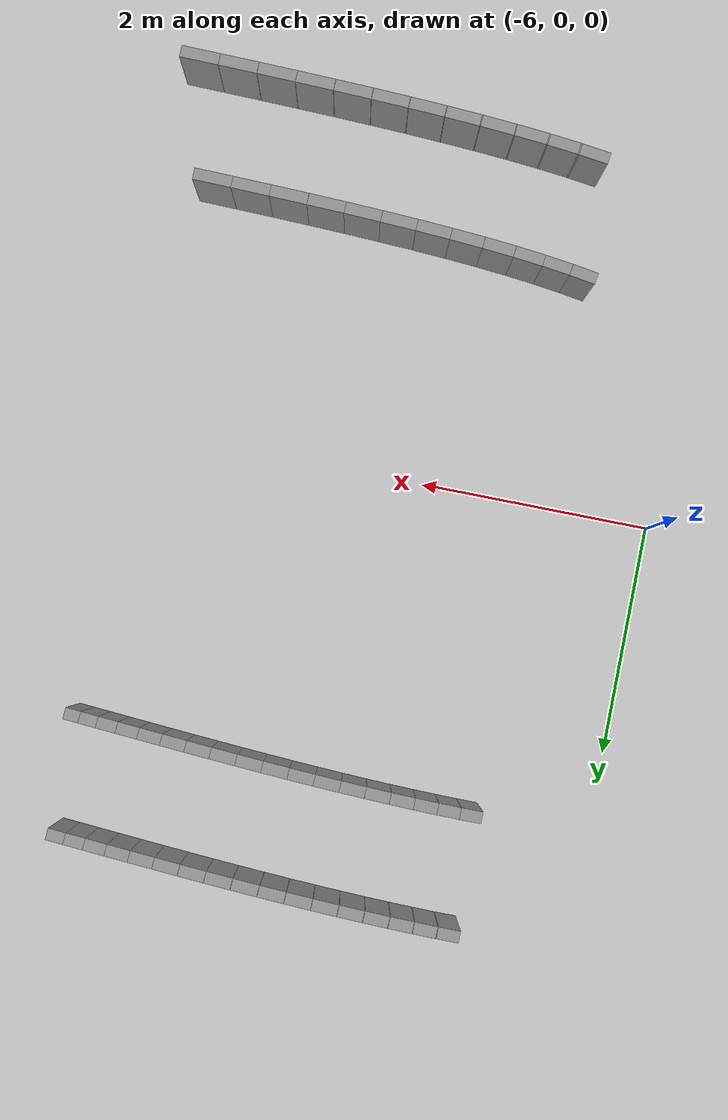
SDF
<sdf version="1.6">
 <world name="default">
  <include><uri>model://ground_plane</uri></include>
  <include><uri>model://sun</uri></include>
  <model name="wall_4_outward">
   <static>true</static>
   <link name="link">
    <collision name="collision">
     <geometry><box><size>0.1306976688387076 0.1 1.0</size></box></geometry>
    </collision>
    <visual name="visual">
     <geometry><box><size>0.1306976688387076 0.1 1.0</size></box></geometry>
     <material>
      <script><uri>file://media/materials/scripts/gazebo.material</uri><name>Gazebo/Gray</name></script>
     </material>
    </visual>
   </link>
   <pose>-1.4865466899300728 2.5135411570151414 0.5 0 0 3.067268497837281</pose>
  </model>
  <model name="wall_5_outward">
   <static>true</static>
   <link name="link">
    <collision name="collision"><geometry><box><size>0.151537158029325 0.1 1.0</size></box></geometry></collision>
    <visual name="visual">
     <geometry><box><size>0.151537158029325 0.1 1.0</size></box></geometry>
     <material>
      <script><uri>file://media/materials/scripts/gazebo.material</uri><name>Gazebo/Gray</name></script>
     </material>
    </visual>
   </link>
   <pose>-1.6272745344189103 2.524019618722159 0.5 0 0 3.0672726943349033</pose>
  </model>
  <model name="wall_6_outward">
   <static>true</static>
   <link name="link">
    <collision name="collision">
     <geometry><box><size>0.16990768270761064 0.1 1.0</size></box></geometry>
    </collision>
    <visual name="visual">
     <geometry><box><size>0.16990768270761064 0.1 1.0</size></box></geometry>
     <material>
      <script><uri>file://media/materials/scripts/gazebo.material</uri><name>Gazebo/Gray</name></script>
     </material>
    </visual>
   </link>
   <pose>-1.7875548677201951 2.535932249018213 0.5 0 0 3.067523641800801</pose>
  </model>
  <model name="wall_7_outward">
   <static>true</static>
   <link name="link">
    <collision name="collision">
     <geometry><box><size>0.18561479345425694 0.1 1.0</size></box></geometry>
    </collision>
    <visual name="visual">
     <geometry><box><size>0.18561479345425694 0.1 1.0</size></box></geometry>
     <material>
      <script><uri>file://media/materials/scripts/gazebo.material</uri><name>Gazebo/Gray</name></script>
     </material>
    </visual>
   </link>
   <pose>-1.9648328296530533 2.549031070232745 0.5 0 0 3.0681259019662304</pose>
  </model>
  <model name="wall_8_outward">
   <static>true</static>
   <link name="link">
    <collision name="collision">
     <geometry><box><size>0.1985889123548593 0.1 1.0</size></box></geometry>
    </collision>
    <visual name="visual">
     <geometry><box><size>0.1985889123548593 0.1 1.0</size></box></geometry>
     <material>
      <script><uri>file://media/materials/scripts/gazebo.material</uri><name>Gazebo/Gray</name></script>
     </material>
    </visual>
   </link>
   <pose>-2.156424088885226 2.563027538495194 0.5 0 0 3.0691754652221364</pose>
  </model>
  <model name="wall_9_outward">
   <static>true</static>
   <link name="link">
    <collision name="collision">
     <geometry><box><size>0.20883403933903916 0.1 1.0</size></box></geometry>
    </collision>
    <visual name="visual">
     <geometry><box><size>0.20883403933903916 0.1 1.0</size></box></geometry>
     <material>
      <script><uri>file://media/materials/scripts/gazebo.material</uri><name>Gazebo/Gray</name></script>
     </material>
    </visual>
   </link>
   <pose>-2.359613490430906 2.577601708133042 0.5 0 0 3.0707611890762445</pose>
  </model>
  <model name="wall_10_outward">
   <static>true</static>
   <link name="link">
    <collision name="collision"><geometry><box><size>0.216436371516167 0.1 1.0</size></box></geometry></collision>
    <visual name="visual">
     <geometry><box><size>0.216436371516167 0.1 1.0</size></box></geometry>
     <material>
      <script><uri>file://media/materials/scripts/gazebo.material</uri><name>Gazebo/Gray</name></script>
     </material>
    </visual>
   </link>
   <pose>-2.5717321251800476 2.592412532849492 0.5 0 0 3.072964394940024</pose>
  </model>
  <model name="wall_11_outward">
   <static>true</static>
   <link name="link">
    <collision name="collision">
     <geometry><box><size>0.22154062162151802 0.1 1.0</size></box></geometry>
    </collision>
    <visual name="visual">
     <geometry><box><size>0.22154062162151802 0.1 1.0</size></box></geometry>
     <material>
      <script><uri>file://media/materials/scripts/gazebo.material</uri><name>Gazebo/Gray</name></script>
     </material>
    </visual>
   </link>
   <pose>-2.790226542347383 2.607111235725002 0.5 0 0 3.0758444247548358</pose>
  </model>
  <model name="wall_12_outward">
   <static>true</static>
   <link name="link">
    <collision name="collision">
     <geometry><box><size>0.22433429040783703 0.1 1.0</size></box></geometry>
    </collision>
    <visual name="visual">
     <geometry><box><size>0.22433429040783703 0.1 1.0</size></box></geometry>
     <material>
      <script><uri>file://media/materials/scripts/gazebo.material</uri><name>Gazebo/Gray</name></script>
     </material>
    </visual>
   </link>
   <pose>-3.0127080790691334 2.621356044116502 0.5 0 0 3.0794390664921374</pose>
  </model>
  <model name="wall_13_outward">
   <static>true</static>
   <link name="link">
    <collision name="collision">
     <geometry><box><size>0.22504762564123426 0.1 1.0</size></box></geometry>
    </collision>
    <visual name="visual">
     <geometry><box><size>0.22504762564123426 0.1 1.0</size></box></geometry>
     <material>
      <script><uri>file://media/materials/scripts/gazebo.material</uri><name>Gazebo/Gray</name></script>
     </material>
    </visual>
   </link>
   <pose>-3.236994426883612 2.634825399262277 0.5 0 0 3.083774877540525</pose>
  </model>
  <model name="wall_14_outward">
   <static>true</static>
   <link name="link">
    <collision name="collision">
     <geometry><box><size>0.2239262534368999 0.1 1.0</size></box></geometry>
    </collision>
    <visual name="visual">
     <geometry><box><size>0.2239262534368999 0.1 1.0</size></box></geometry>
     <material>
      <script><uri>file://media/materials/scripts/gazebo.material</uri><name>Gazebo/Gray</name></script>
     </material>
    </visual>
   </link>
   <pose>-3.461137621740315 2.647230652320924 0.5 0 0 3.0888454774995346</pose>
  </model>
  <model name="wall_15_outward">
   <static>true</static>
   <link name="link">
    <collision name="collision">
     <geometry><box><size>0.22121787977610916 0.1 1.0</size></box></geometry>
    </collision>
    <visual name="visual">
     <geometry><box><size>0.22121787977610916 0.1 1.0</size></box></geometry>
     <material>
      <script><uri>file://media/materials/scripts/gazebo.material</uri><name>Gazebo/Gray</name></script>
     </material>
    </visual>
   </link>
   <pose>-3.6834319924109 2.658326774298981 0.5 0 0 3.0946251012105375</pose>
  </model>
  <model name="wall_16_outward">
   <static>true</static>
   <link name="link">
    <collision name="collision">
     <geometry><box><size>0.2171589068234425 0.1 1.0</size></box></geometry>
    </collision>
    <visual name="visual">
     <geometry><box><size>0.2171589068234425 0.1 1.0</size></box></geometry>
     <material>
      <script><uri>file://media/materials/scripts/gazebo.material</uri><name>Gazebo/Gray</name></script>
     </material>
    </visual>
   </link>
   <pose>-3.9024093239194277 2.6679173634878026 0.5 0 0 3.1010815743255806</pose>
  </model>
  <model name="wall_17_outward">
   <static>true</static>
   <link name="link">
    <collision name="collision">
     <geometry><box><size>0.21196690600001417 0.1 1.0</size></box></geometry>
    </collision>
    <visual name="visual">
     <geometry><box><size>0.21196690600001417 0.1 1.0</size></box></geometry>
     <material>
      <script><uri>file://media/materials/scripts/gazebo.material</uri><name>Gazebo/Gray</name></script>
     </material>
    </visual>
   </link>
   <pose>-4.116823968110159 2.675856025139705 0.5 0 0 3.108173728384551</pose>
  </model>
  <model name="wall_18_outward">
   <static>true</static>
   <link name="link">
    <collision name="collision">
     <geometry><box><size>0.20583165776811335 0.1 1.0</size></box></geometry>
    </collision>
    <visual name="visual">
     <geometry><box><size>0.20583165776811335 0.1 1.0</size></box></geometry>
     <material>
      <script><uri>file://media/materials/scripts/gazebo.material</uri><name>Gazebo/Gray</name></script>
     </material>
    </visual>
   </link>
   <pose>-4.325630023222242 2.6820443629476562 0.5 0 0 3.115868370377387</pose>
  </model>
  <model name="wall_19_outward">
   <static>true</static>
   <link name="link">
    <collision name="collision">
     <geometry><box><size>0.1989081307571607 0.1 1.0</size></box></geometry>
    </collision>
    <visual name="visual">
     <geometry><box><size>0.1989081307571607 0.1 1.0</size></box></geometry>
     <material>
      <script><uri>file://media/materials/scripts/gazebo.material</uri><name>Gazebo/Gray</name></script>
     </material>
    </visual>
   </link>
   <pose>-4.5279507352353505 2.6864263655881295 0.5 0 0 3.1241479501018383</pose>
  </model>
  <model name="wall_20_outward">
   <static>true</static>
   <link name="link">
    <collision name="collision">
     <geometry><box><size>0.1913271043381779 0.1 1.0</size></box></geometry>
    </collision>
    <visual name="visual">
     <geometry><box><size>0.1913271043381779 0.1 1.0</size></box></geometry>
     <material>
      <script><uri>file://media/materials/scripts/gazebo.material</uri><name>Gazebo/Gray</name></script>
     </material>
    </visual>
   </link>
   <pose>-4.7230497058045655 2.688981233878158 0.5 0 0 3.1330207406002106</pose>
  </model>
  <model name="wall_21_outward">
   <static>true</static>
   <link name="link">
    <collision name="collision">
     <geometry><box><size>0.1831754176465537 0.1 1.0</size></box></geometry>
    </collision>
    <visual name="visual">
     <geometry><box><size>0.1831754176465537 0.1 1.0</size></box></geometry>
     <material>
      <script><uri>file://media/materials/scripts/gazebo.material</uri><name>Gazebo/Gray</name></script>
     </material>
    </visual>
   </link>
   <pose>-4.910297411832005 2.689715199492401 0.5 0 0 -3.1406531825315893</pose>
  </model>
  <model name="wall_105_outward">
   <static>true</static>
   <link name="link">
    <collision name="collision">
     <geometry><box><size>0.22477146798443184 0.1 1.0</size></box></geometry>
    </collision>
    <visual name="visual">
     <geometry><box><size>0.22477146798443184 0.1 1.0</size></box></geometry>
     <material>
      <script><uri>file://media/materials/scripts/gazebo.material</uri><name>Gazebo/Gray</name></script>
     </material>
    </visual>
   </link>
   <pose>-4.9827035296404425 -1.9433198348055365 0.5 0 0 -0.15928366221227067</pose>
  </model>
  <model name="wall_106_outward">
   <static>true</static>
   <link name="link">
    <collision name="collision">
     <geometry><box><size>0.24184038587932466 0.1 1.0</size></box></geometry>
    </collision>
    <visual name="visual">
     <geometry><box><size>0.24184038587932466 0.1 1.0</size></box></geometry>
     <material>
      <script><uri>file://media/materials/scripts/gazebo.material</uri><name>Gazebo/Gray</name></script>
     </material>
    </visual>
   </link>
   <pose>-4.7518644875207565 -1.977002371498501 0.5 0 0 -0.13151424753716573</pose>
  </model>
  <model name="wall_107_outward">
   <static>true</static>
   <link name="link">
    <collision name="collision">
     <geometry><box><size>0.2579221022300264 0.1 1.0</size></box></geometry>
    </collision>
    <visual name="visual">
     <geometry><box><size>0.2579221022300264 0.1 1.0</size></box></geometry>
     <material>
      <script><uri>file://media/materials/scripts/gazebo.material</uri><name>Gazebo/Gray</name></script>
     </material>
    </visual>
   </link>
   <pose>-4.503783368454294 -2.0068018735864714 0.5 0 0 -0.10832636845760608</pose>
  </model>
  <model name="wall_108_outward">
   <static>true</static>
   <link name="link">
    <collision name="collision">
     <geometry><box><size>0.27274174312101246 0.1 1.0</size></box></geometry>
    </collision>
    <visual name="visual">
     <geometry><box><size>0.27274174312101246 0.1 1.0</size></box></geometry>
     <material>
      <script><uri>file://media/materials/scripts/gazebo.material</uri><name>Gazebo/Gray</name></script>
     </material>
    </visual>
   </link>
   <pose>-4.239748844947918 -2.0328849809651803 0.5 0 0 -0.08914385459792704</pose>
  </model>
  <model name="wall_109_outward">
   <static>true</static>
   <link name="link">
    <collision name="collision">
     <geometry><box><size>0.2860803457742471 0.1 1.0</size></box></geometry>
    </collision>
    <visual name="visual">
     <geometry><box><size>0.2860803457742471 0.1 1.0</size></box></geometry>
     <material>
      <script><uri>file://media/materials/scripts/gazebo.material</uri><name>Gazebo/Gray</name></script>
     </material>
    </visual>
   </link>
   <pose>-3.9612646490370924 -2.0555181897192973 0.5 0 0 -0.07342070831206039</pose>
  </model>
  <model name="wall_110_outward">
   <static>true</static>
   <link name="link">
    <collision name="collision">
     <geometry><box><size>0.29778614511936535 0.1 1.0</size></box></geometry>
    </collision>
    <visual name="visual">
     <geometry><box><size>0.29778614511936535 0.1 1.0</size></box></geometry>
     <material>
      <script><uri>file://media/materials/scripts/gazebo.material</uri><name>Gazebo/Gray</name></script>
     </material>
    </visual>
   </link>
   <pose>-3.6699905541302424 -2.075036118974178 0.5 0 0 -0.06065283764905289</pose>
  </model>
  <model name="wall_111_outward">
   <static>true</static>
   <link name="link">
    <collision name="collision">
     <geometry><box><size>0.3077722774730943 0.1 1.0</size></box></geometry>
    </collision>
    <visual name="visual">
     <geometry><box><size>0.3077722774730943 0.1 1.0</size></box></geometry>
     <material>
      <script><uri>file://media/materials/scripts/gazebo.material</uri><name>Gazebo/Gray</name></script>
     </material>
    </visual>
   </link>
   <pose>-3.367680429245766 -2.0918118188253834 0.5 0 0 -0.05038614240022373</pose>
  </model>
  <model name="wall_112_outward">
   <static>true</static>
   <link name="link">
    <collision name="collision">
     <geometry><box><size>0.3160221276902532 0.1 1.0</size></box></geometry>
    </collision>
    <visual name="visual">
     <geometry><box><size>0.3160221276902532 0.1 1.0</size></box></geometry>
     <material>
      <script><uri>file://media/materials/scripts/gazebo.material</uri><name>Gazebo/Gray</name></script>
     </material>
    </visual>
   </link>
   <pose>-3.0561192725037487 -2.1062300503966203 0.5 0 0 -0.04221073744997625</pose>
  </model>
  <model name="wall_113_outward">
   <static>true</static>
   <link name="link">
    <collision name="collision">
     <geometry><box><size>0.3225789740543398 0.1 1.0</size></box></geometry>
    </collision>
    <visual name="visual">
     <geometry><box><size>0.3225789740543398 0.1 1.0</size></box></geometry>
     <material>
      <script><uri>file://media/materials/scripts/gazebo.material</uri><name>Gazebo/Gray</name></script>
     </material>
    </visual>
   </link>
   <pose>-2.7370626502371667 -2.118666160453621 0.5 0 0 -0.03577144094286338</pose>
  </model>
  <model name="wall_114_outward">
   <static>true</static>
   <link name="link">
    <collision name="collision">
     <geometry><box><size>0.3275412892666153 0.1 1.0</size></box></geometry>
    </collision>
    <visual name="visual">
     <geometry><box><size>0.3275412892666153 0.1 1.0</size></box></geometry>
     <material>
      <script><uri>file://media/materials/scripts/gazebo.material</uri><name>Gazebo/Gray</name></script>
     </material>
    </visual>
   </link>
   <pose>-2.412183129210276 -2.129469880354068 0.5 0 0 -0.03075146118492356</pose>
  </model>
  <model name="wall_115_outward">
   <static>true</static>
   <link name="link">
    <collision name="collision">
     <geometry><box><size>0.3310462891742299 0.1 1.0</size></box></geometry>
    </collision>
    <visual name="visual">
     <geometry><box><size>0.3310462891742299 0.1 1.0</size></box></geometry>
     <material>
      <script><uri>file://media/materials/scripts/gazebo.material</uri><name>Gazebo/Gray</name></script>
     </material>
    </visual>
   </link>
   <pose>-2.083026539912125 -2.1389531252310263 0.5 0 0 -0.026874715504981158</pose>
  </model>
  <model name="wall_116_outward">
   <static>true</static>
   <link name="link">
    <collision name="collision">
     <geometry><box><size>0.33325689390825775 0.1 1.0</size></box></geometry>
    </collision>
    <visual name="visual">
     <geometry><box><size>0.33325689390825775 0.1 1.0</size></box></geometry>
     <material>
      <script><uri>file://media/materials/scripts/gazebo.material</uri><name>Gazebo/Gray</name></script>
     </material>
    </visual>
   </link>
   <pose>-1.750982319578268 -2.14738354415886 0.5 0 0 -0.0239031588449662</pose>
  </model>
  <model name="wall_5_inward">
   <static>true</static>
   <link name="link">
    <collision name="collision">
     <geometry><box><size>0.1517264286900302 0.1 1.0</size></box></geometry>
    </collision>
    <visual name="visual">
     <geometry><box><size>0.1517264286900302 0.1 1.0</size></box></geometry>
     <material>
      <script><uri>file://media/materials/scripts/gazebo.material</uri><name>Gazebo/Gray</name></script>
     </material>
    </visual>
   </link>
   <pose>-1.5531162909883092 3.5212661017663267 0.5 0 0 3.0672727980983545</pose>
  </model>
  <model name="wall_6_inward">
   <static>true</static>
   <link name="link">
    <collision name="collision">
     <geometry><box><size>0.17042211468500557 0.1 1.0</size></box></geometry>
    </collision>
    <visual name="visual">
     <geometry><box><size>0.17042211468500557 0.1 1.0</size></box></geometry>
     <material>
      <script><uri>file://media/materials/scripts/gazebo.material</uri><name>Gazebo/Gray</name></script>
     </material>
    </visual>
   </link>
   <pose>-1.7137475130624993 3.5332047401364832 0.5 0 0 3.0675241738874037</pose>
  </model>
  <model name="wall_7_inward">
   <static>true</static>
   <link name="link">
    <collision name="collision">
     <geometry><box><size>0.18602774933864613 0.1 1.0</size></box></geometry>
    </collision>
    <visual name="visual">
     <geometry><box><size>0.18602774933864613 0.1 1.0</size></box></geometry>
     <material>
      <script><uri>file://media/materials/scripts/gazebo.material</uri><name>Gazebo/Gray</name></script>
     </material>
    </visual>
   </link>
   <pose>-1.8914879100647073 3.54633770607592 0.5 0 0 3.0681259019662317</pose>
  </model>
  <model name="wall_8_inward">
   <static>true</static>
   <link name="link">
    <collision name="collision">
     <geometry><box><size>0.000524781603865018 0.1 1.0</size></box></geometry>
    </collision>
    <visual name="visual">
     <geometry><box><size>0.000524781603865018 0.1 1.0</size></box></geometry>
     <material>
      <script><uri>file://media/materials/scripts/gazebo.material</uri><name>Gazebo/Gray</name></script>
     </material>
    </visual>
   </link>
   <pose>-1.9845125758469824 3.553184110215236 0.5 0 0 3.0686506835937664</pose>
  </model>
  <model name="wall_9_inward">
   <static>true</static>
   <link name="link">
    <collision name="collision">
     <geometry><box><size>0.19924773423918213 0.1 1.0</size></box></geometry>
    </collision>
    <visual name="visual">
     <geometry><box><size>0.19924773423918213 0.1 1.0</size></box></geometry>
     <material>
      <script><uri>file://media/materials/scripts/gazebo.material</uri><name>Gazebo/Gray</name></script>
     </material>
    </visual>
   </link>
   <pose>-2.08413702399878 3.5604114087987986 0.5 0 0 3.069175465222136</pose>
  </model>
  <model name="wall_10_inward">
   <static>true</static>
   <link name="link">
    <collision name="collision">
     <geometry><box><size>0.0007928618439846253 0.1 1.0</size></box></geometry>
    </collision>
    <visual name="visual">
     <geometry><box><size>0.0007928618439846253 0.1 1.0</size></box></geometry>
     <material>
      <script><uri>file://media/materials/scripts/gazebo.material</uri><name>Gazebo/Gray</name></script>
     </material>
    </visual>
   </link>
   <pose>-2.1838951935709687 3.567647954874552 0.5 0 0 3.069968327149446</pose>
  </model>
  <model name="wall_11_inward">
   <static>true</static>
   <link name="link">
    <collision name="collision">
     <geometry><box><size>0.2097812720745181 0.1 1.0</size></box></geometry>
    </collision>
    <visual name="visual">
     <geometry><box><size>0.2097812720745181 0.1 1.0</size></box></geometry>
     <material>
      <script><uri>file://media/materials/scripts/gazebo.material</uri><name>Gazebo/Gray</name></script>
     </material>
    </visual>
   </link>
   <pose>-2.288918230887539 3.5750996711563605 0.5 0 0 3.0707611890762436</pose>
  </model>
  <model name="wall_12_inward">
   <static>true</static>
   <link name="link">
    <collision name="collision">
     <geometry><box><size>0.001101602709085606 0.1 1.0</size></box></geometry>
    </collision>
    <visual name="visual">
     <geometry><box><size>0.001101602709085606 0.1 1.0</size></box></geometry>
     <material>
      <script><uri>file://media/materials/scripts/gazebo.material</uri><name>Gazebo/Gray</name></script>
     </material>
    </visual>
   </link>
   <pose>-2.3940953165306413 3.582561393796774 0.5 0 0 3.0718627920081247</pose>
  </model>
  <model name="wall_13_inward">
   <static>true</static>
   <link name="link">
    <collision name="collision">
     <geometry><box><size>0.2177071811562366 0.1 1.0</size></box></geometry>
    </collision>
    <visual name="visual">
     <geometry><box><size>0.2177071811562366 0.1 1.0</size></box></geometry>
     <material>
      <script><uri>file://media/materials/scripts/gazebo.material</uri><name>Gazebo/Gray</name></script>
     </material>
    </visual>
   </link>
   <pose>-2.5032421291501628 3.5900643396445866 0.5 0 0 3.0729643949400245</pose>
  </model>
  <model name="wall_14_inward">
   <static>true</static>
   <link name="link">
    <collision name="collision">
     <geometry><box><size>0.0014400144097257283 0.1 1.0</size></box></geometry>
    </collision>
    <visual name="visual">
     <geometry><box><size>0.0014400144097257283 0.1 1.0</size></box></geometry>
     <material>
      <script><uri>file://media/materials/scripts/gazebo.material</uri><name>Gazebo/Gray</name></script>
     </material>
    </visual>
   </link>
   <pose>-2.612557861606825 3.5975772489377644 0.5 0 0 3.0744044098475456</pose>
  </model>
  <model name="wall_15_inward">
   <static>true</static>
   <link name="link">
    <collision name="collision">
     <geometry><box><size>0.22315929097505227 0.1 1.0</size></box></geometry>
    </collision>
    <visual name="visual">
     <geometry><box><size>0.22315929097505227 0.1 1.0</size></box></geometry>
     <material>
      <script><uri>file://media/materials/scripts/gazebo.material</uri><name>Gazebo/Gray</name></script>
     </material>
    </visual>
   </link>
   <pose>-2.724614806729247 3.604956468277846 0.5 0 0 3.075844424754835</pose>
  </model>
  <model name="wall_16_inward">
   <static>true</static>
   <link name="link">
    <collision name="collision">
     <geometry><box><size>0.0017973199009863137 0.1 1.0</size></box></geometry>
    </collision>
    <visual name="visual">
     <geometry><box><size>0.0017973199009863137 0.1 1.0</size></box></geometry>
     <material>
      <script><uri>file://media/materials/scripts/gazebo.material</uri><name>Gazebo/Gray</name></script>
     </material>
    </visual>
   </link>
   <pose>-2.8368501921289537 3.6123447789421523 0.5 0 0 3.0776417456232865</pose>
  </model>
  <model name="wall_17_inward">
   <static>true</static>
   <link name="link">
    <collision name="collision">
     <geometry><box><size>0.22631690626994475 0.1 1.0</size></box></geometry>
    </collision>
    <visual name="visual">
     <geometry><box><size>0.22631690626994475 0.1 1.0</size></box></geometry>
     <material>
      <script><uri>file://media/materials/scripts/gazebo.material</uri><name>Gazebo/Gray</name></script>
     </material>
    </visual>
   </link>
   <pose>-2.9506869691391397 3.619430886253319 0.5 0 0 3.079439066492139</pose>
  </model>
  <model name="wall_18_inward">
   <static>true</static>
   <link name="link">
    <collision name="collision">
     <geometry><box><size>0.002167903826067013 0.1 1.0</size></box></geometry>
    </collision>
    <visual name="visual">
     <geometry><box><size>0.002167903826067013 0.1 1.0</size></box></geometry>
     <material>
      <script><uri>file://media/materials/scripts/gazebo.material</uri><name>Gazebo/Gray</name></script>
     </material>
    </visual>
   </link>
   <pose>-3.064708925521218 3.626524545216432 0.5 0 0 3.0816069720163526</pose>
  </model>
  <model name="wall_19_inward">
   <static>true</static>
   <link name="link">
    <collision name="collision">
     <geometry><box><size>0.22739923280727042 0.1 1.0</size></box></geometry>
    </collision>
    <visual name="visual">
     <geometry><box><size>0.22739923280727042 0.1 1.0</size></box></geometry>
     <material>
      <script><uri>file://media/materials/scripts/gazebo.material</uri><name>Gazebo/Gray</name></script>
     </material>
    </visual>
   </link>
   <pose>-3.1793005542229977 3.633159724773367 0.5 0 0 3.083774877540524</pose>
  </model>
  <model name="wall_20_inward">
   <static>true</static>
   <link name="link">
    <collision name="collision">
     <geometry><box><size>0.0025352972634628034 0.1 1.0</size></box></geometry>
    </collision>
    <visual name="visual">
     <geometry><box><size>0.0025352972634628034 0.1 1.0</size></box></geometry>
     <material>
      <script><uri>file://media/materials/scripts/gazebo.material</uri><name>Gazebo/Gray</name></script>
     </material>
    </visual>
   </link>
   <pose>-3.294075892670823 3.6397999647887094 0.5 0 0 3.0863101775200357</pose>
  </model>
  <model name="wall_21_inward">
   <static>true</static>
   <link name="link">
    <collision name="collision">
     <geometry><box><size>0.22663881609263203 0.1 1.0</size></box></geometry>
    </collision>
    <visual name="visual">
     <geometry><box><size>0.22663881609263203 0.1 1.0</size></box></geometry>
     <material>
      <script><uri>file://media/materials/scripts/gazebo.material</uri><name>Gazebo/Gray</name></script>
     </material>
    </visual>
   </link>
   <pose>-3.408503407037493 3.6458445152818033 0.5 0 0 3.0888454774995378</pose>
  </model>
  <model name="wall_22_inward">
   <static>true</static>
   <link name="link">
    <collision name="collision">
     <geometry><box><size>0.0028898078333603637 0.1 1.0</size></box></geometry>
    </collision>
    <visual name="visual">
     <geometry><box><size>0.0028898078333603637 0.1 1.0</size></box></geometry>
     <material>
      <script><uri>file://media/materials/scripts/gazebo.material</uri><name>Gazebo/Gray</name></script>
     </material>
    </visual>
   </link>
   <pose>-3.52310831779151 3.6518910319688045 0.5 0 0 3.0917352893549994</pose>
  </model>
  <model name="wall_23_inward">
   <static>true</static>
   <link name="link">
    <collision name="collision">
     <geometry><box><size>0.22427691361200344 0.1 1.0</size></box></geometry>
    </collision>
    <visual name="visual">
     <geometry><box><size>0.22427691361200344 0.1 1.0</size></box></geometry>
     <material>
      <script><uri>file://media/materials/scripts/gazebo.material</uri><name>Gazebo/Gray</name></script>
     </material>
    </visual>
   </link>
   <pose>-3.636566219812597 3.6572279738763482 0.5 0 0 3.094625101210538</pose>
  </model>
  <model name="wall_24_inward">
   <static>true</static>
   <link name="link">
    <collision name="collision">
     <geometry><box><size>0.0032282309503404273 0.1 1.0</size></box></geometry>
    </collision>
    <visual name="visual">
     <geometry><box><size>0.0032282309503404273 0.1 1.0</size></box></geometry>
     <material>
      <script><uri>file://media/materials/scripts/gazebo.material</uri><name>Gazebo/Gray</name></script>
     </material>
    </visual>
   </link>
   <pose>-3.7501935851016373 3.6625634843220647 0.5 0 0 3.097853337767983</pose>
  </model>
  <model name="wall_25_inward">
   <static>true</static>
   <link name="link">
    <collision name="collision">
     <geometry><box><size>0.22054607665594356 0.1 1.0</size></box></geometry>
    </collision>
    <visual name="visual">
     <geometry><box><size>0.22054607665594356 0.1 1.0</size></box></geometry>
     <material>
      <script><uri>file://media/materials/scripts/gazebo.material</uri><name>Gazebo/Gray</name></script>
     </material>
    </visual>
   </link>
   <pose>-3.861988720357959 3.667100120105321 0.5 0 0 3.101081574325581</pose>
  </model>
  <model name="wall_26_inward">
   <static>true</static>
   <link name="link">
    <collision name="collision">
     <geometry><box><size>0.0035460695977034607 0.1 1.0</size></box></geometry>
    </collision>
    <visual name="visual">
     <geometry><box><size>0.0035460695977034607 0.1 1.0</size></box></geometry>
     <material>
      <script><uri>file://media/materials/scripts/gazebo.material</uri><name>Gazebo/Gray</name></script>
     </material>
    </visual>
   </link>
   <pose>-3.9739431074868286 3.6716317034016175 0.5 0 0 3.104627651355055</pose>
  </model>
  <model name="wall_27_inward">
   <static>true</static>
   <link name="link">
    <collision name="collision">
     <geometry><box><size>0.2156636219360734 0.1 1.0</size></box></geometry>
    </collision>
    <visual name="visual">
     <geometry><box><size>0.2156636219360734 0.1 1.0</size></box></geometry>
     <material>
      <script><uri>file://media/materials/scripts/gazebo.material</uri><name>Gazebo/Gray</name></script>
     </material>
    </visual>
   </link>
   <pose>-4.0834865330405385 3.6753001812059054 0.5 0 0 3.1081737283845525</pose>
  </model>
  <model name="wall_28_inward">
   <static>true</static>
   <link name="link">
    <collision name="collision">
     <geometry><box><size>0.003847311505160195 0.1 1.0</size></box></geometry>
    </collision>
    <visual name="visual">
     <geometry><box><size>0.003847311505160195 0.1 1.0</size></box></geometry>
     <material>
      <script><uri>file://media/materials/scripts/gazebo.material</uri><name>Gazebo/Gray</name></script>
     </material>
    </visual>
   </link>
   <pose>-4.193180949719789 3.6789600109957217 0.5 0 0 3.1120210493810343</pose>
  </model>
  <model name="wall_29_inward">
   <static>true</static>
   <link name="link">
    <collision name="collision">
     <geometry><box><size>0.20982523451340243 0.1 1.0</size></box></geometry>
    </collision>
    <visual name="visual">
     <geometry><box><size>0.20982523451340243 0.1 1.0</size></box></geometry>
     <material>
      <script><uri>file://media/materials/scripts/gazebo.material</uri><name>Gazebo/Gray</name></script>
     </material>
    </visual>
   </link>
   <pose>-4.2999816712335726 3.6817153925301698 0.5 0 0 3.1158683703773864</pose>
  </model>
  <model name="wall_30_inward">
   <static>true</static>
   <link name="link">
    <collision name="collision">
     <geometry><box><size>0.00413977803771315 0.1 1.0</size></box></geometry>
    </collision>
    <visual name="visual">
     <geometry><box><size>0.00413977803771315 0.1 1.0</size></box></geometry>
     <material>
      <script><uri>file://media/materials/scripts/gazebo.material</uri><name>Gazebo/Gray</name></script>
     </material>
    </visual>
   </link>
   <pose>-4.406928984899421 3.6844585708052966 0.5 0 0 3.1200081602395886</pose>
  </model>
  <model name="wall_31_inward">
   <static>true</static>
   <link name="link">
    <collision name="collision">
     <geometry><box><size>0.2031962496901268 0.1 1.0</size></box></geometry>
    </collision>
    <visual name="visual">
     <geometry><box><size>0.2031962496901268 0.1 1.0</size></box></geometry>
     <material>
      <script><uri>file://media/materials/scripts/gazebo.material</uri><name>Gazebo/Gray</name></script>
     </material>
    </visual>
   </link>
   <pose>-4.5105810579506205 3.686275504113362 0.5 0 0 3.124147950101838</pose>
  </model>
  <model name="wall_32_inward">
   <static>true</static>
   <link name="link">
    <collision name="collision">
     <geometry><box><size>0.004436380696639443 0.1 1.0</size></box></geometry>
    </collision>
    <visual name="visual">
     <geometry><box><size>0.004436380696639443 0.1 1.0</size></box></geometry>
     <material>
      <script><uri>file://media/materials/scripts/gazebo.material</uri><name>Gazebo/Gray</name></script>
     </material>
    </visual>
   </link>
   <pose>-4.614381726809132 3.6880766174747244 0.5 0 0 3.128584345351043</pose>
  </model>
  <model name="wall_33_inward">
   <static>true</static>
   <link name="link">
    <collision name="collision">
     <geometry><box><size>0.19592318045386636 0.1 1.0</size></box></geometry>
    </collision>
    <visual name="visual">
     <geometry><box><size>0.19592318045386636 0.1 1.0</size></box></geometry>
     <material>
      <script><uri>file://media/materials/scripts/gazebo.material</uri><name>Gazebo/Gray</name></script>
     </material>
    </visual>
   </link>
   <pose>-4.7145577207365355 3.6889451795090866 0.5 0 0 3.1330207406002115</pose>
  </model>
  <model name="wall_34_inward">
   <static>true</static>
   <link name="link">
    <collision name="collision">
     <geometry><box><size>0.004755674097644114 0.1 1.0</size></box></geometry>
    </collision>
    <visual name="visual">
     <geometry><box><size>0.004755674097644114 0.1 1.0</size></box></geometry>
     <material>
      <script><uri>file://media/materials/scripts/gazebo.material</uri><name>Gazebo/Gray</name></script>
     </material>
    </visual>
   </link>
   <pose>-4.814893531723691 3.6897939617830176 0.5 0 0 3.137776432624041</pose>
  </model>
  <model name="wall_35_inward">
   <static>true</static>
   <link name="link">
    <collision name="collision">
     <geometry><box><size>0.18811990516394855 0.1 1.0</size></box></geometry>
    </collision>
    <visual name="visual">
     <geometry><box><size>0.18811990516394855 0.1 1.0</size></box></geometry>
     <material>
      <script><uri>file://media/materials/scripts/gazebo.material</uri><name>Gazebo/Gray</name></script>
     </material>
    </visual>
   </link>
   <pose>-4.911331262530713 3.6897146695224023 0.5 0 0 -3.1406531825315884</pose>
  </model>
  <model name="wall_205_inward">
   <static>true</static>
   <link name="link">
    <collision name="collision">
     <geometry><box><size>0.25458041523560543 0.1 1.0</size></box></geometry>
    </collision>
    <visual name="visual">
     <geometry><box><size>0.25458041523560543 0.1 1.0</size></box></geometry>
     <material>
      <script><uri>file://media/materials/scripts/gazebo.material</uri><name>Gazebo/Gray</name></script>
     </material>
    </visual>
   </link>
   <pose>-4.883567789942877 -2.9682917178620833 0.5 0 0 -0.13151424753716584</pose>
  </model>
  <model name="wall_206_inward">
   <static>true</static>
   <link name="link">
    <collision name="collision">
     <geometry><box><size>0.011593679799727407 0.1 1.0</size></box></geometry>
    </collision>
    <visual name="visual">
     <geometry><box><size>0.011593679799727407 0.1 1.0</size></box></geometry>
     <material>
      <script><uri>file://media/materials/scripts/gazebo.material</uri><name>Gazebo/Gray</name></script>
     </material>
    </visual>
   </link>
   <pose>-4.751621594158594 -2.9856774721050288 0.5 0 0 -0.11992030799740411</pose>
  </model>
  <model name="wall_207_inward">
   <static>true</static>
   <link name="link">
    <collision name="collision">
     <geometry><box><size>0.26851510727949446 0.1 1.0</size></box></geometry>
    </collision>
    <visual name="visual">
     <geometry><box><size>0.26851510727949446 0.1 1.0</size></box></geometry>
     <material>
      <script><uri>file://media/materials/scripts/gazebo.material</uri><name>Gazebo/Gray</name></script>
     </material>
    </visual>
   </link>
   <pose>-4.612395792000639 -3.000886171912785 0.5 0 0 -0.10832636845760603</pose>
  </model>
  <model name="wall_208_inward">
   <static>true</static>
   <link name="link">
    <collision name="collision">
     <geometry><box><size>0.009591109877028535 0.1 1.0</size></box></geometry>
    </collision>
    <visual name="visual">
     <geometry><box><size>0.009591109877028535 0.1 1.0</size></box></geometry>
     <material>
      <script><uri>file://media/materials/scripts/gazebo.material</uri><name>Gazebo/Gray</name></script>
     </material>
    </visual>
   </link>
   <pose>-4.4741529989450335 -3.0158740985773083 0.5 0 0 -0.09873511152775871</pose>
  </model>
  <model name="wall_209_inward">
   <static>true</static>
   <link name="link">
    <collision name="collision">
     <geometry><box><size>0.28146838619818515 0.1 1.0</size></box></geometry>
    </collision>
    <visual name="visual">
     <geometry><box><size>0.28146838619818515 0.1 1.0</size></box></geometry>
     <material>
      <script><uri>file://media/materials/scripts/gazebo.material</uri><name>Gazebo/Gray</name></script>
     </material>
    </visual>
   </link>
   <pose>-4.329205417804828 -3.0288757984876846 0.5 0 0 -0.08914385459792847</pose>
  </model>
  <model name="wall_210_inward">
   <static>true</static>
   <link name="link">
    <collision name="collision">
     <geometry><box><size>0.00786149216330568 0.1 1.0</size></box></geometry>
    </collision>
    <visual name="visual">
     <geometry><box><size>0.00786149216330568 0.1 1.0</size></box></geometry>
     <material>
      <script><uri>file://media/materials/scripts/gazebo.material</uri><name>Gazebo/Gray</name></script>
     </material>
    </visual>
   </link>
   <pose>-4.185112267175439 -3.0417239259963607 0.5 0 0 -0.08128228145499938</pose>
  </model>
  <model name="wall_211_inward">
   <static>true</static>
   <link name="link">
    <collision name="collision">
     <geometry><box><size>0.2932032243565077 0.1 1.0</size></box></geometry>
    </collision>
    <visual name="visual">
     <geometry><box><size>0.2932032243565077 0.1 1.0</size></box></geometry>
     <material>
      <script><uri>file://media/materials/scripts/gazebo.material</uri><name>Gazebo/Gray</name></script>
     </material>
    </visual>
   </link>
   <pose>-4.034987844498694 -3.0527970007486767 0.5 0 0 -0.07342070831205945</pose>
  </model>
  <model name="wall_212_inward">
   <static>true</static>
   <link name="link">
    <collision name="collision">
     <geometry><box><size>0.00638389196910429 0.1 1.0</size></box></geometry>
    </collision>
    <visual name="visual">
     <geometry><box><size>0.00638389196910429 0.1 1.0</size></box></geometry>
     <material>
      <script><uri>file://media/materials/scripts/gazebo.material</uri><name>Gazebo/Gray</name></script>
     </material>
    </visual>
   </link>
   <pose>-3.8855964137253305 -3.063764744715594 0.5 0 0 -0.0670367729804936</pose>
  </model>
  <model name="wall_213_inward">
   <static>true</static>
   <link name="link">
    <collision name="collision">
     <geometry><box><size>0.3035448525058212 0.1 1.0</size></box></geometry>
    </collision>
    <visual name="visual">
     <geometry><box><size>0.3035448525058212 0.1 1.0</size></box></geometry>
     <material>
      <script><uri>file://media/materials/scripts/gazebo.material</uri><name>Gazebo/Gray</name></script>
     </material>
    </visual>
   </link>
   <pose>-3.7309182930942644 -3.073178347506435 0.5 0 0 -0.060652837649052924</pose>
  </model>
  <model name="wall_214_inward">
   <static>true</static>
   <link name="link">
    <collision name="collision">
     <geometry><box><size>0.005133325079415522 0.1 1.0</size></box></geometry>
    </collision>
    <visual name="visual">
     <geometry><box><size>0.005133325079415522 0.1 1.0</size></box></geometry>
     <material>
      <script><uri>file://media/materials/scripts/gazebo.material</uri><name>Gazebo/Gray</name></script>
     </material>
    </visual>
   </link>
   <pose>-3.5768622411463573 -3.082520559369073 0.5 0 0 -0.05551949002465101</pose>
  </model>
  <model name="wall_215_inward">
   <static>true</static>
   <link name="link">
    <collision name="collision">
     <geometry><box><size>0.3123828364519734 0.1 1.0</size></box></geometry>
    </collision>
    <visual name="visual">
     <geometry><box><size>0.3123828364519734 0.1 1.0</size></box></geometry>
     <material>
      <script><uri>file://media/materials/scripts/gazebo.material</uri><name>Gazebo/Gray</name></script>
     </material>
    </visual>
   </link>
   <pose>-3.4183063397039835 -3.090529539469738 0.5 0 0 -0.05038614240022661</pose>
  </model>
  <model name="wall_216_inward">
   <static>true</static>
   <link name="link">
    <collision name="collision">
     <geometry><box><size>0.004087691091351933 0.1 1.0</size></box></geometry>
    </collision>
    <visual name="visual">
     <geometry><box><size>0.004087691091351933 0.1 1.0</size></box></geometry>
     <material>
      <script><uri>file://media/materials/scripts/gazebo.material</uri><name>Gazebo/Gray</name></script>
     </material>
    </visual>
   </link>
   <pose>-3.2602714906603985 -3.0984906860287444 0.5 0 0 -0.04629843992508442</pose>
  </model>
  <model name="wall_217_inward">
   <static>true</static>
   <link name="link">
    <collision name="collision">
     <geometry><box><size>0.31967582000103995 0.1 1.0</size></box></geometry>
    </collision>
    <visual name="visual">
     <geometry><box><size>0.31967582000103995 0.1 1.0</size></box></geometry>
     <material>
      <script><uri>file://media/materials/scripts/gazebo.material</uri><name>Gazebo/Gray</name></script>
     </material>
    </visual>
   </link>
   <pose>-3.098534299426354 -3.1053301517815126 0.5 0 0 -0.04221073744997628</pose>
  </model>
  <model name="wall_218_inward">
   <static>true</static>
   <link name="link">
    <collision name="collision">
     <geometry><box><size>0.0032196426910073533 0.1 1.0</size></box></geometry>
    </collision>
    <visual name="visual">
     <geometry><box><size>0.0032196426910073533 0.1 1.0</size></box></geometry>
     <material>
      <script><uri>file://media/materials/scripts/gazebo.material</uri><name>Gazebo/Gray</name></script>
     </material>
    </visual>
   </link>
   <pose>-2.937230165800469 -3.112137777260899 0.5 0 0 -0.03899108919643207</pose>
  </model>
  <model name="wall_219_inward">
   <static>true</static>
   <link name="link">
    <collision name="collision">
     <geometry><box><size>0.3254438013186225 0.1 1.0</size></box></geometry>
    </collision>
    <visual name="visual">
     <geometry><box><size>0.3254438013186225 0.1 1.0</size></box></geometry>
     <material>
      <script><uri>file://media/materials/scripts/gazebo.material</uri><name>Gazebo/Gray</name></script>
     </material>
    </visual>
   </link>
   <pose>-2.773003765394931 -3.118020085606104 0.5 0 0 -0.03577144094286411</pose>
  </model>
  <model name="wall_220_inward">
   <static>true</static>
   <link name="link">
    <collision name="collision">
     <geometry><box><size>0.002509987243461224 0.1 1.0</size></box></geometry>
    </collision>
    <visual name="visual">
     <geometry><box><size>0.002509987243461224 0.1 1.0</size></box></geometry>
     <material>
      <script><uri>file://media/materials/scripts/gazebo.material</uri><name>Gazebo/Gray</name></script>
     </material>
    </visual>
   </link>
   <pose>-2.609131663309305 -3.123881376379515 0.5 0 0 -0.0332614510637626</pose>
  </model>
  <model name="wall_221_inward">
   <static>true</static>
   <link name="link">
    <collision name="collision">
     <geometry><box><size>0.3297654744755423 0.1 1.0</size></box></geometry>
    </collision>
    <visual name="visual">
     <geometry><box><size>0.3297654744755423 0.1 1.0</size></box></geometry>
     <material>
      <script><uri>file://media/materials/scripts/gazebo.material</uri><name>Gazebo/Gray</name></script>
     </material>
    </visual>
   </link>
   <pose>-2.4430725813324097 -3.128992697587084 0.5 0 0 -0.030751461184923928</pose>
  </model>
  <model name="wall_222_inward">
   <static>true</static>
   <link name="link">
    <collision name="collision">
     <geometry><box><size>0.0019383716261337522 0.1 1.0</size></box></geometry>
    </collision>
    <visual name="visual">
     <geometry><box><size>0.0019383716261337522 0.1 1.0</size></box></geometry>
     <material>
      <script><uri>file://media/materials/scripts/gazebo.material</uri><name>Gazebo/Gray</name></script>
     </material>
    </visual>
   </link>
   <pose>-2.277299015291638 -3.1340902049548776 0.5 0 0 -0.028813088345021172</pose>
  </model>
  <model name="wall_223_inward">
   <static>true</static>
   <link name="link">
    <collision name="collision">
     <geometry><box><size>0.3327583665196392 0.1 1.0</size></box></geometry>
    </collision>
    <visual name="visual">
     <geometry><box><size>0.3327583665196392 0.1 1.0</size></box></geometry>
     <material>
      <script><uri>file://media/materials/scripts/gazebo.material</uri><name>Gazebo/Gray</name></script>
     </material>
    </visual>
   </link>
   <pose>-2.1100111285911654 -3.1385889813188874 0.5 0 0 -0.0268747155049809</pose>
  </model>
  <model name="wall_224_inward">
   <static>true</static>
   <link name="link">
    <collision name="collision">
     <geometry><box><size>0.0014857777833554664 0.1 1.0</size></box></geometry>
    </collision>
    <visual name="visual">
     <geometry><box><size>0.0014857777833554664 0.1 1.0</size></box></geometry>
     <material>
      <script><uri>file://media/materials/scripts/gazebo.material</uri><name>Gazebo/Gray</name></script>
     </material>
    </visual>
   </link>
   <pose>-1.9429493759532956 -3.1430786954433287 0.5 0 0 -0.025388937174897944</pose>
  </model>
  <model name="wall_225_inward">
   <static>true</static>
   <link name="link">
    <collision name="collision">
     <geometry><box><size>0.33456789636387846 0.1 1.0</size></box></geometry>
    </collision>
    <visual name="visual">
     <geometry><box><size>0.33456789636387846 0.1 1.0</size></box></geometry>
     <material>
      <script><uri>file://media/materials/scripts/gazebo.material</uri><name>Gazebo/Gray</name></script>
     </material>
    </visual>
   </link>
   <pose>-1.7749705657860124 -3.14709578859754 0.5 0 0 -0.02390315884496621</pose>
  </model>
  <model name="wall_226_inward">
   <static>true</static>
   <link name="link">
    <collision name="collision">
     <geometry><box><size>0.001136224754515121 0.1 1.0</size></box></geometry>
    </collision>
    <visual name="visual">
     <geometry><box><size>0.001136224754515121 0.1 1.0</size></box></geometry>
     <material>
      <script><uri>file://media/materials/scripts/gazebo.material</uri><name>Gazebo/Gray</name></script>
     </material>
    </visual>
   </link>
   <pose>-1.6071664399430308 -3.151106955678168 0.5 0 0 -0.022766933845873253</pose>
  </model>
  <model name="wall_227_inward">
   <static>true</static>
   <link name="link">
    <collision name="collision">
     <geometry><box><size>0.3353543637317638 0.1 1.0</size></box></geometry>
    </collision>
    <visual name="visual">
     <geometry><box><size>0.3353543637317638 0.1 1.0</size></box></geometry>
     <material>
      <script><uri>file://media/materials/scripts/gazebo.material</uri><name>Gazebo/Gray</name></script>
     </material>
    </visual>
   </link>
   <pose>-1.438960518434027 -3.154746582209392 0.5 0 0 -0.021630708846977837</pose>
  </model>
 </world>
</sdf>
